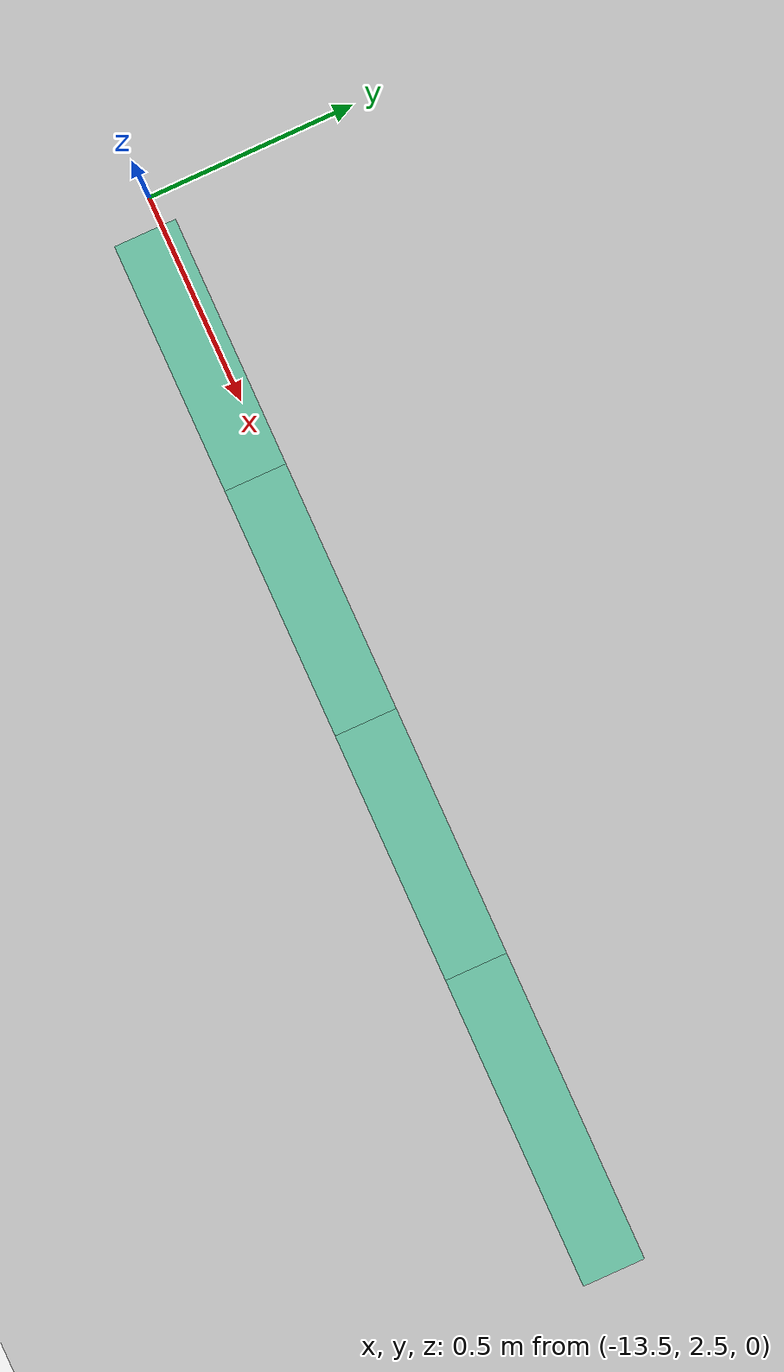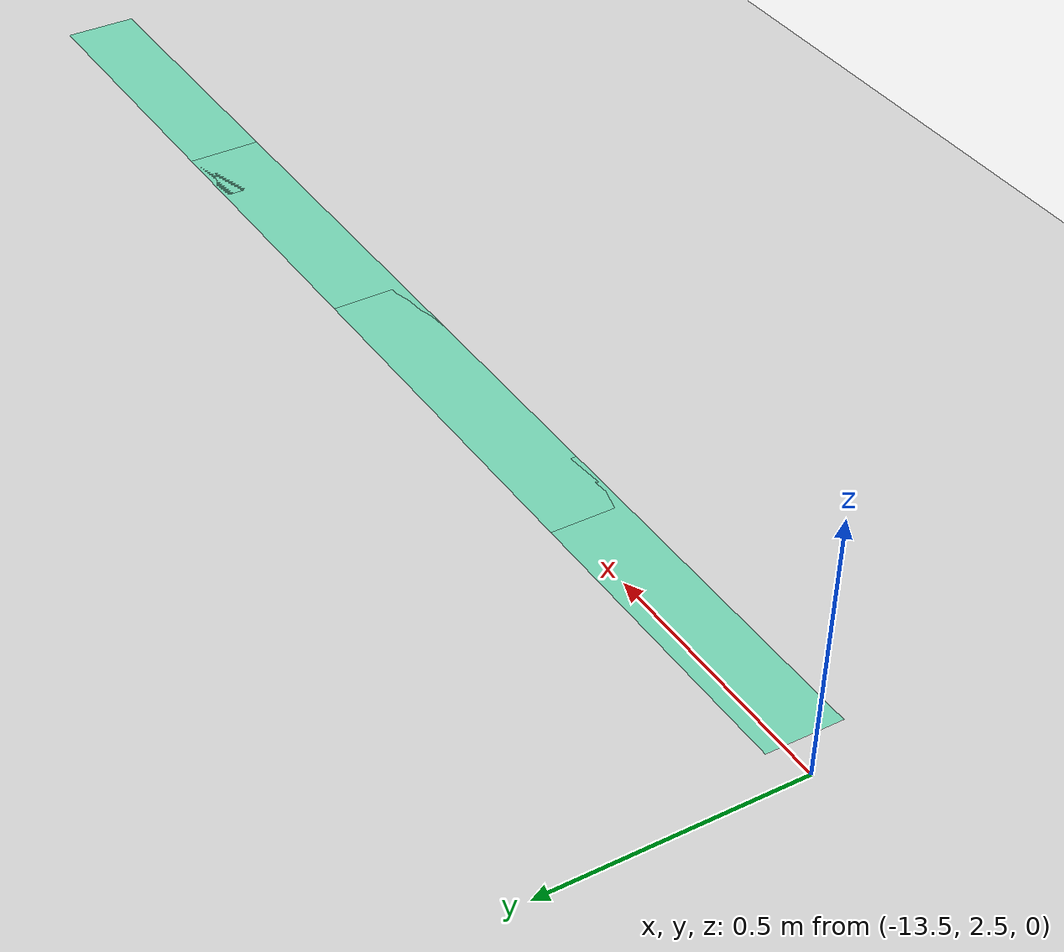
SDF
<sdf version="1.6">
 <world name="default">
  <model name="ground_plane">
   <static>1</static>
   <link name="link">
    <collision name="collision">
     <geometry><plane><normal>0 0 1</normal><size>100 100</size></plane></geometry>
     <surface><friction><ode><mu>100</mu><mu2>50</mu2></ode></friction></surface>
    </collision>
    <visual name="visual">
     <cast_shadows>0</cast_shadows>
     <geometry><plane><normal>0 0 1</normal><size>100 100</size></plane></geometry>
     <material>
      <script><uri>file://media/materials/scripts/gazebo.material</uri><name>Gazebo/Grey</name></script>
     </material>
    </visual>
   </link>
  </model>
  <model name="pomdp_path">
   <link name="Wall_222">
    <pose>2.75633 7.04109 0 0 -0 0</pose>
    <visual name="Wall_222_Visual">
     <pose>0 0 0.0001 0 -0 0</pose>
     <geometry><box><size>0.75 0.15 0</size></box></geometry>
     <material>
      <script><uri>file://media/materials/scripts/gazebo.material</uri><name>Gazebo/Grey</name></script>
      <ambient>0.435294 0.796078 0.67451 1</ambient>
      <shader type="pixel"/>
     </material>
     <meta><layer>0</layer></meta>
    </visual>
    <collision name="Wall_222_Collision">
     <pose>0 0 0.0001 0 -0 0</pose>
     <geometry><box><size>0.75 0.15 0</size></box></geometry>
     <surface>
      <friction>
       <ode><mu>1</mu><mu2>1</mu2><fdir1>0 0 0</fdir1><slip1>0</slip1><slip2>0</slip2></ode>
       <torsional>
        <coefficient>1</coefficient>
        <patch_radius>0</patch_radius>
        <surface_radius>0</surface_radius>
        <use_patch_radius>1</use_patch_radius>
        <ode><slip>0</slip></ode>
       </torsional>
      </friction>
      <bounce><restitution_coefficient>0</restitution_coefficient><threshold>1e+06</threshold></bounce>
      <contact>
       <collide_without_contact>0</collide_without_contact>
       <collide_without_contact_bitmask>1</collide_without_contact_bitmask>
       <collide_bitmask>1</collide_bitmask>
       <ode>
        <soft_cfm>0</soft_cfm>
        <soft_erp>0.2</soft_erp>
        <kp>1e+13</kp>
        <kd>1</kd>
        <max_vel>0.01</max_vel>
        <min_depth>0</min_depth>
       </ode>
       <bullet>
        <split_impulse>1</split_impulse>
        <split_impulse_penetration_threshold>-0.01</split_impulse_penetration_threshold>
        <soft_cfm>0</soft_cfm>
        <soft_erp>0.2</soft_erp>
        <kp>1e+13</kp>
        <kd>1</kd>
       </bullet>
      </contact>
     </surface>
    </collision>
   </link>
   <link name="Wall_223">
    <pose>3.35633 7.04109 0 0 -0 0</pose>
    <visual name="Wall_223_Visual">
     <pose>0 0 0.0001 0 -0 0</pose>
     <geometry><box><size>0.75 0.15 0</size></box></geometry>
     <material>
      <script><uri>file://media/materials/scripts/gazebo.material</uri><name>Gazebo/Grey</name></script>
      <ambient>0.435294 0.796078 0.67451 1</ambient>
      <shader type="pixel"/>
     </material>
     <meta><layer>0</layer></meta>
    </visual>
    <collision name="Wall_223_Collision">
     <pose>0 0 0.0001 0 -0 0</pose>
     <geometry><box><size>0.75 0.15 0</size></box></geometry>
     <surface>
      <friction>
       <ode><mu>1</mu><mu2>1</mu2><fdir1>0 0 0</fdir1><slip1>0</slip1><slip2>0</slip2></ode>
       <torsional>
        <coefficient>1</coefficient>
        <patch_radius>0</patch_radius>
        <surface_radius>0</surface_radius>
        <use_patch_radius>1</use_patch_radius>
        <ode><slip>0</slip></ode>
       </torsional>
      </friction>
      <bounce><restitution_coefficient>0</restitution_coefficient><threshold>1e+06</threshold></bounce>
      <contact>
       <collide_without_contact>0</collide_without_contact>
       <collide_without_contact_bitmask>1</collide_without_contact_bitmask>
       <collide_bitmask>1</collide_bitmask>
       <ode>
        <soft_cfm>0</soft_cfm>
        <soft_erp>0.2</soft_erp>
        <kp>1e+13</kp>
        <kd>1</kd>
        <max_vel>0.01</max_vel>
        <min_depth>0</min_depth>
       </ode>
       <bullet>
        <split_impulse>1</split_impulse>
        <split_impulse_penetration_threshold>-0.01</split_impulse_penetration_threshold>
        <soft_cfm>0</soft_cfm>
        <soft_erp>0.2</soft_erp>
        <kp>1e+13</kp>
        <kd>1</kd>
       </bullet>
      </contact>
     </surface>
    </collision>
   </link>
   <link name="Wall_224">
    <pose>3.95633 7.04109 0 0 -0 0</pose>
    <visual name="Wall_224_Visual">
     <pose>0 0 0.0001 0 -0 0</pose>
     <geometry><box><size>0.75 0.15 0</size></box></geometry>
     <material>
      <script><uri>file://media/materials/scripts/gazebo.material</uri><name>Gazebo/Grey</name></script>
      <ambient>0.435294 0.796078 0.67451 1</ambient>
      <shader type="pixel"/>
     </material>
     <meta><layer>0</layer></meta>
    </visual>
    <collision name="Wall_224_Collision">
     <pose>0 0 0.0001 0 -0 0</pose>
     <geometry><box><size>0.75 0.15 0</size></box></geometry>
     <surface>
      <friction>
       <ode><mu>1</mu><mu2>1</mu2><fdir1>0 0 0</fdir1><slip1>0</slip1><slip2>0</slip2></ode>
       <torsional>
        <coefficient>1</coefficient>
        <patch_radius>0</patch_radius>
        <surface_radius>0</surface_radius>
        <use_patch_radius>1</use_patch_radius>
        <ode><slip>0</slip></ode>
       </torsional>
      </friction>
      <bounce><restitution_coefficient>0</restitution_coefficient><threshold>1e+06</threshold></bounce>
      <contact>
       <collide_without_contact>0</collide_without_contact>
       <collide_without_contact_bitmask>1</collide_without_contact_bitmask>
       <collide_bitmask>1</collide_bitmask>
       <ode>
        <soft_cfm>0</soft_cfm>
        <soft_erp>0.2</soft_erp>
        <kp>1e+13</kp>
        <kd>1</kd>
        <max_vel>0.01</max_vel>
        <min_depth>0</min_depth>
       </ode>
       <bullet>
        <split_impulse>1</split_impulse>
        <split_impulse_penetration_threshold>-0.01</split_impulse_penetration_threshold>
        <soft_cfm>0</soft_cfm>
        <soft_erp>0.2</soft_erp>
        <kp>1e+13</kp>
        <kd>1</kd>
       </bullet>
      </contact>
     </surface>
    </collision>
   </link>
   <link name="Wall_225">
    <pose>4.55633 7.04109 0 0 -0 0</pose>
    <visual name="Wall_225_Visual">
     <pose>0 0 0.0001 0 -0 0</pose>
     <geometry><box><size>0.75 0.15 0</size></box></geometry>
     <material>
      <script><uri>file://media/materials/scripts/gazebo.material</uri><name>Gazebo/Grey</name></script>
      <ambient>0.435294 0.796078 0.67451 1</ambient>
      <shader type="pixel"/>
     </material>
     <meta><layer>0</layer></meta>
    </visual>
    <collision name="Wall_225_Collision">
     <pose>0 0 0.0001 0 -0 0</pose>
     <geometry><box><size>0.75 0.15 0</size></box></geometry>
     <surface>
      <friction>
       <ode><mu>1</mu><mu2>1</mu2><fdir1>0 0 0</fdir1><slip1>0</slip1><slip2>0</slip2></ode>
       <torsional>
        <coefficient>1</coefficient>
        <patch_radius>0</patch_radius>
        <surface_radius>0</surface_radius>
        <use_patch_radius>1</use_patch_radius>
        <ode><slip>0</slip></ode>
       </torsional>
      </friction>
      <bounce><restitution_coefficient>0</restitution_coefficient><threshold>1e+06</threshold></bounce>
      <contact>
       <collide_without_contact>0</collide_without_contact>
       <collide_without_contact_bitmask>1</collide_without_contact_bitmask>
       <collide_bitmask>1</collide_bitmask>
       <ode>
        <soft_cfm>0</soft_cfm>
        <soft_erp>0.2</soft_erp>
        <kp>1e+13</kp>
        <kd>1</kd>
        <max_vel>0.01</max_vel>
        <min_depth>0</min_depth>
       </ode>
       <bullet>
        <split_impulse>1</split_impulse>
        <split_impulse_penetration_threshold>-0.01</split_impulse_penetration_threshold>
        <soft_cfm>0</soft_cfm>
        <soft_erp>0.2</soft_erp>
        <kp>1e+13</kp>
        <kd>1</kd>
       </bullet>
      </contact>
     </surface>
    </collision>
   </link>
   <static>1</static>
   <pose>-8.49995 9.50005 0 0 -0 3.14159</pose>
  </model>
 </world>
</sdf>
